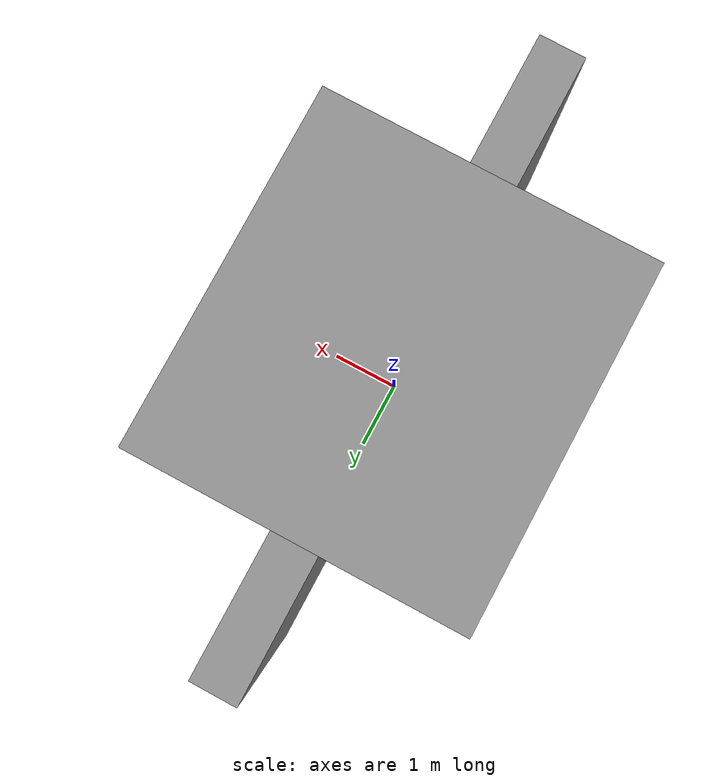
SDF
<?xml version='1.0'?>
<sdf version='1.6'>
  <model name='screen_and_stand'>
    <link name='link'>
      <pose frame=''>0 0 0 0 -0 0</pose>
      <inertial>
        <mass>1</mass>
        <inertia>
          <ixx>0.166667</ixx>
          <ixy>0</ixy>
          <ixz>0</ixz>
          <iyy>0.166667</iyy>
          <iyz>0</iyz>
          <izz>0.166667</izz>
        </inertia>
        <pose frame=''>0 0 0 0 -0 0</pose>
      </inertial>
      <self_collide>0</self_collide>
      <kinematic>0</kinematic>
      <gravity>1</gravity>
      <visual name='ModelPreview_4::link::visual_1'>
        <geometry>
          <box>
            <size>0.6346939 8.695306127 4.88714286</size>
          </box>
        </geometry>
        <material>
          <script>
            <name>Gazebo/Grey</name>
            <uri>file://media/materials/scripts/gazebo.material</uri>
          </script>
          <ambient>0.3 0.3 0.3 1</ambient>
          <diffuse>0.7 0.7 0.7 1</diffuse>
          <specular>0.01 0.01 0.01 1</specular>
          <emissive>0 0 0 1</emissive>
          <shader type='vertex'>
            <normal_map>__default__</normal_map>
          </shader>
        </material>
        <pose frame=''>0 0 1 0 -0 0</pose>
        <cast_shadows>1</cast_shadows>
        <transparency>0</transparency>
      </visual>
      <visual name='visual'>
        <geometry>
          <box>
            <size>4.442857145 4.760204084 7.74326531</size>
          </box>
        </geometry>
        <material>
          <script>
            <name>Gazebo/Grey</name>
            <uri>file://media/materials/scripts/gazebo.material</uri>
          </script>
          <ambient>0.3 0.3 0.3 1</ambient>
          <diffuse>0.7 0.7 0.7 1</diffuse>
          <specular>0.01 0.01 0.01 1</specular>
          <emissive>0 0 0 1</emissive>
          <shader type='vertex'>
            <normal_map>__default__</normal_map>
          </shader>
        </material>
        <pose frame=''>0 0 0 0 -0 0</pose>
        <cast_shadows>1</cast_shadows>
        <transparency>0</transparency>
      </visual>
      <collision name='collision_1'>
        <laser_retro>0</laser_retro>
        <max_contacts>10</max_contacts>
        <pose frame=''>0 0 1 0 -0 0</pose>
        <geometry>
          <box>
            <size>0.6346939 8.695306127 4.88714286</size>
          </box>
        </geometry>
        <surface>
          <friction>
            <ode>
              <mu>1</mu>
              <mu2>1</mu2>
              <fdir1>0 0 0</fdir1>
              <slip1>0</slip1>
              <slip2>0</slip2>
            </ode>
            <torsional>
              <coefficient>1</coefficient>
              <patch_radius>0</patch_radius>
              <surface_radius>0</surface_radius>
              <use_patch_radius>1</use_patch_radius>
              <ode>
                <slip>0</slip>
              </ode>
            </torsional>
          </friction>
          <bounce>
            <restitution_coefficient>0</restitution_coefficient>
            <threshold>1e+06</threshold>
          </bounce>
          <contact>
            <collide_without_contact>0</collide_without_contact>
            <collide_without_contact_bitmask>1</collide_without_contact_bitmask>
            <collide_bitmask>1</collide_bitmask>
            <ode>
              <soft_cfm>0</soft_cfm>
              <soft_erp>0.2</soft_erp>
              <kp>1e+13</kp>
              <kd>1</kd>
              <max_vel>0.01</max_vel>
              <min_depth>0</min_depth>
            </ode>
            <bullet>
              <split_impulse>1</split_impulse>
              <split_impulse_penetration_threshold>-0.01</split_impulse_penetration_threshold>
              <soft_cfm>0</soft_cfm>
              <soft_erp>0.2</soft_erp>
              <kp>1e+13</kp>
              <kd>1</kd>
            </bullet>
          </contact>
        </surface>
      </collision>
      <collision name='collision'>
        <laser_retro>0</laser_retro>
        <max_contacts>10</max_contacts>
        <pose frame=''>0 0 0 0 -0 0</pose>
        <geometry>
          <box>
            <size>4.442857145 4.760204084 7.74326531</size>
          </box>
        </geometry>
        <surface>
          <friction>
            <ode>
              <mu>1</mu>
              <mu2>1</mu2>
              <fdir1>0 0 0</fdir1>
              <slip1>0</slip1>
              <slip2>0</slip2>
            </ode>
            <torsional>
              <coefficient>1</coefficient>
              <patch_radius>0</patch_radius>
              <surface_radius>0</surface_radius>
              <use_patch_radius>1</use_patch_radius>
              <ode>
                <slip>0</slip>
              </ode>
            </torsional>
          </friction>
          <bounce>
            <restitution_coefficient>0</restitution_coefficient>
            <threshold>1e+06</threshold>
          </bounce>
          <contact>
            <collide_without_contact>0</collide_without_contact>
            <collide_without_contact_bitmask>1</collide_without_contact_bitmask>
            <collide_bitmask>1</collide_bitmask>
            <ode>
              <soft_cfm>0</soft_cfm>
              <soft_erp>0.2</soft_erp>
              <kp>1e+13</kp>
              <kd>1</kd>
              <max_vel>0.01</max_vel>
              <min_depth>0</min_depth>
            </ode>
            <bullet>
              <split_impulse>1</split_impulse>
              <split_impulse_penetration_threshold>-0.01</split_impulse_penetration_threshold>
              <soft_cfm>0</soft_cfm>
              <soft_erp>0.2</soft_erp>
              <kp>1e+13</kp>
              <kd>1</kd>
            </bullet>
          </contact>
        </surface>
      </collision>
    </link>
    <static>1</static>
    <allow_auto_disable>1</allow_auto_disable>
  </model>
</sdf>
